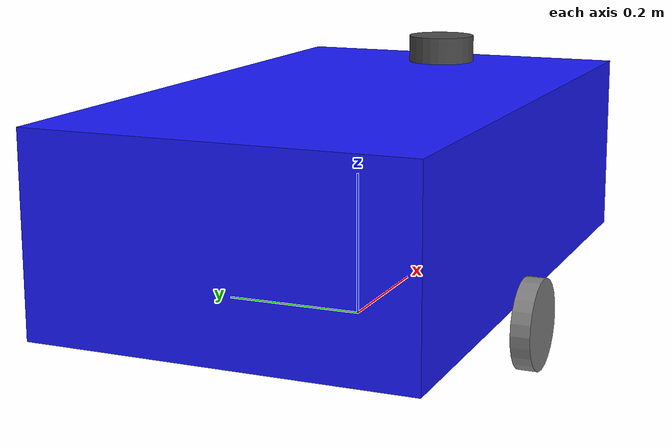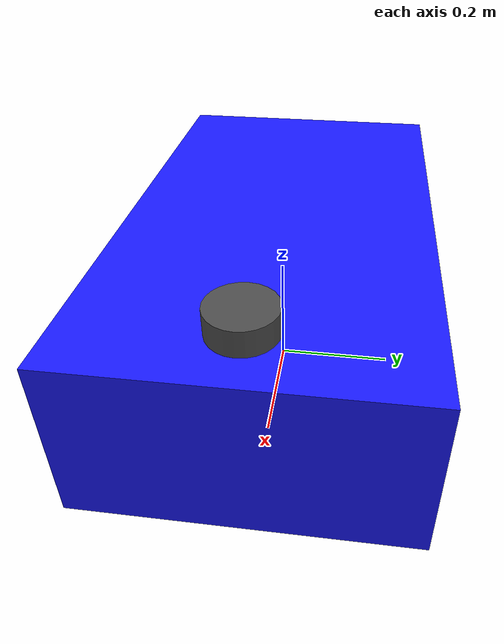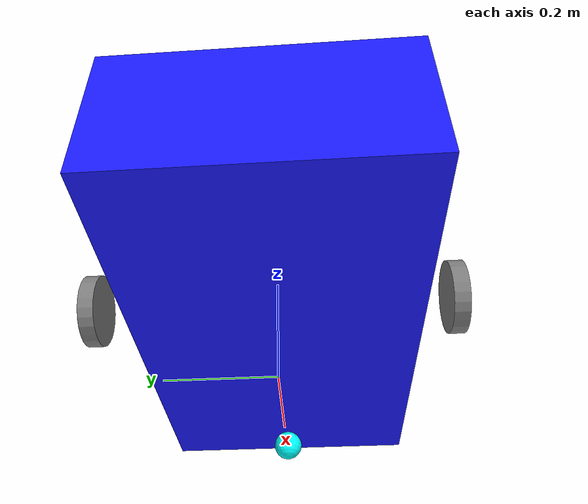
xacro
<?xml version="1.0"?>
<robot name="agv" xmlns:xacro="http://www.ros.org/wiki/xacro">

  <!-- ================= ARGS ================= -->
  <xacro:arg name="is_ignition" default="true"/>
  <xacro:arg name="is_sim" default="true"/>

  <!-- ================= INCLUDES ================= -->
  <xacro:include filename="$(find bumperbot_description)/urdf/robot_gazebo.xacro" />
  <xacro:include filename="$(find bumperbot_description)/urdf/robot_ros2_control.xacro" />

  <!-- ================= PROPERTIES ================= -->
  <xacro:property name="base_length" value="0.86"/>
  <xacro:property name="base_width"  value="0.50"/>
  <xacro:property name="base_height" value="0.26"/>

  <xacro:property name="wheel_radius" value="0.0585"/>
  <xacro:property name="wheel_width"  value="0.025"/>

  <xacro:property name="wheel_xoff" value="0.132"/>
  <xacro:property name="wheel_ygap" value="0.027"/>
  <xacro:property name="wheel_zoff" value="${base_height/2}"/>

  <xacro:property name="caster_xoff" value="${base_length/2 - 0.08}"/>
  <xacro:property name="caster_radius" value="0.02925"/>

  <!-- ================= INERTIA MACROS ================= -->
  <xacro:macro name="box_inertia" params="m w h d">
    <inertial>
      <mass value="${m}"/>
      <origin xyz="0 0 0"/>
      <inertia
        ixx="${(m/12)*(h*h+d*d)}"
        ixy="0" ixz="0"
        iyy="${(m/12)*(w*w+d*d)}"
        iyz="0"
        izz="${(m/12)*(w*w+h*h)}"/>
    </inertial>
  </xacro:macro>

  <xacro:macro name="cylinder_inertia" params="m r h">
    <inertial>
      <mass value="${m}"/>
      <origin xyz="0 0 0"/>
      <inertia
        ixx="${(m/12)*(3*r*r+h*h)}"
        ixy="0" ixz="0"
        iyy="${(m/12)*(3*r*r+h*h)}"
        iyz="0"
        izz="${0.5*m*r*r}"/>
    </inertial>
  </xacro:macro>

  <xacro:macro name="sphere_inertia" params="m r">
    <inertial>
      <mass value="${m}"/>
      <origin xyz="0 0 0"/>
      <inertia
        ixx="${0.4*m*r*r}"
        ixy="0" ixz="0"
        iyy="${0.4*m*r*r}"
        iyz="0"
        izz="${0.4*m*r*r}"/>
    </inertial>
  </xacro:macro>

  <!-- ================= MATERIALS ================= -->
  <material name="blue">
    <color rgba="0.1 0.1 1.0 1.0"/>
  </material>
  <material name="gray">
    <color rgba="0.5 0.5 0.5 1.0"/>
  </material>
  <material name="black">
    <color rgba="0.1 0.1 0.1 1.0"/>
  </material>
  <material name="cyan">
    <color rgba="0 1 1 1"/>
  </material>
  <material name="dark_grey">
    <color rgba="0.3 0.3 0.3 1"/>
  </material>

  <!-- ================= BASE FOOTPRINT ================= -->
  <link name="base_footprint"/>

  <!-- ================= BASE LINK ================= -->
  <link name="base_link">
    <visual>
      <geometry>
        <box size="${base_length} ${base_width} ${base_height}"/>
      </geometry>
      <material name="blue"/>
    </visual>
    <collision>
      <geometry>
        <box size="${base_length} ${base_width} ${base_height}"/>
      </geometry>
    </collision>
    <xacro:box_inertia m="5" w="${base_width}" h="${base_height}" d="${base_length}"/>
  </link>

  <joint name="base_joint" type="fixed">
    <parent link="base_footprint"/>
    <child link="base_link"/>
    <origin xyz="0 0 ${base_height/2 + wheel_radius}" rpy="0 0 0"/>
  </joint>

  <!-- ================= WHEEL MACRO ================= -->
  <xacro:macro name="wheel" params="prefix side">

    <link name="${prefix}_link">
      <visual>
        <origin xyz="0 0 0" rpy="${pi/2} 0 0"/>
        <geometry>
          <cylinder radius="${wheel_radius}" length="${wheel_width}"/>
        </geometry>
        <material name="gray"/>
      </visual>
      <collision>
        <origin xyz="0 0 0" rpy="${pi/2} 0 0"/>
        <geometry>
          <cylinder radius="${wheel_radius}" length="${wheel_width}"/>
        </geometry>
      </collision>
      <xacro:cylinder_inertia m="0.5" r="${wheel_radius}" h="${wheel_width}"/>
    </link>

    <joint name="${prefix}_joint" type="continuous">
      <parent link="base_link"/>
      <child link="${prefix}_link"/>
      <origin
        xyz="${-wheel_xoff}
             ${side*(base_width/2 + wheel_width/2 + wheel_ygap)}
             ${-wheel_zoff}"
        rpy="0 0 0"/>
      <axis xyz="0 1 0"/>
    </joint>

  </xacro:macro>

  <!-- bumperbot uses wheel_right_joint / wheel_left_joint naming -->
  <xacro:macro name="wheel_right" params="prefix side">
    <link name="${prefix}_link">
      <visual>
        <origin xyz="0 0 0" rpy="${pi/2} 0 0"/>
        <geometry>
          <cylinder radius="${wheel_radius}" length="${wheel_width}"/>
        </geometry>
        <material name="gray"/>
      </visual>
      <collision>
        <origin xyz="0 0 0" rpy="${pi/2} 0 0"/>
        <geometry>
          <cylinder radius="${wheel_radius}" length="${wheel_width}"/>
        </geometry>
      </collision>
      <xacro:cylinder_inertia m="0.5" r="${wheel_radius}" h="${wheel_width}"/>
    </link>
    <joint name="${prefix}_joint" type="continuous">
      <parent link="base_link"/>
      <child link="${prefix}_link"/>
      <origin
        xyz="${-wheel_xoff}
             ${side*(base_width/2 + wheel_width/2 + wheel_ygap)}
             ${-wheel_zoff}"
        rpy="0 0 0"/>
      <axis xyz="0 1 0"/>
    </joint>
  </xacro:macro>

  <xacro:wheel_right prefix="wheel_right" side="-1"/>
  <xacro:wheel_right prefix="wheel_left"  side="1"/>

  <!-- ================= CASTER ================= -->
  <link name="caster_front_link">
    <visual>
      <geometry>
        <sphere radius="${caster_radius}"/>
      </geometry>
      <material name="cyan"/>
    </visual>
    <collision>
      <geometry>
        <sphere radius="${caster_radius}"/>
      </geometry>
    </collision>
    <xacro:sphere_inertia m="0.3" r="${caster_radius}"/>
  </link>

  <joint name="caster_front_joint" type="fixed">
    <parent link="base_link"/>
    <child link="caster_front_link"/>
    <origin
      xyz="${caster_xoff}
          0
          -0.15925"
      rpy="0 0 0"/>
  </joint>

  <!-- ================= IMU LINK ================= -->
  <link name="imu_link">
    <visual>
      <geometry>
        <box size="0.04 0.04 0.02"/>
      </geometry>
      <material name="black"/>
    </visual>
    <collision>
      <geometry>
        <box size="0.05 0.05 0.02"/>
      </geometry>
    </collision>
    <xacro:box_inertia m="0.1" w="0.05" h="0.02" d="0.05"/>
  </link>

  <joint name="imu_joint" type="fixed">
    <parent link="base_link"/>
    <child link="imu_link"/>
    <origin
      xyz="-0.082 0.01 ${base_height/2 - 0.03}"
      rpy="0 0 ${pi}"/>
  </joint>

  <!-- ================= LASER LINK ================= -->
  <!-- named laser_link to match bumperbot_gazebo.xacro sensor reference -->
  <link name="laser_link">
    <visual>
      <geometry>
        <cylinder radius="0.05" length="0.04"/>
      </geometry>
      <material name="dark_grey"/>
    </visual>
    <collision>
      <geometry>
        <cylinder radius="0.05" length="0.04"/>
      </geometry>
    </collision>
    <xacro:cylinder_inertia m="0.2" r="0.05" h="0.04"/>
  </link>

  <joint name="laser_joint" type="fixed">
    <parent link="base_link"/>
    <child link="laser_link"/>
    <origin
      xyz="${base_length/2 - 0.10}
          -0.005
          ${base_height/2 + 0.02}"
      rpy="0 0 0"/>
  </joint>

</robot>
